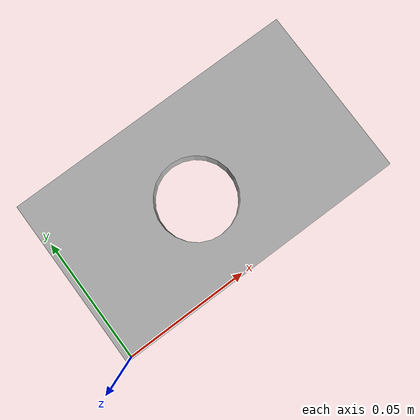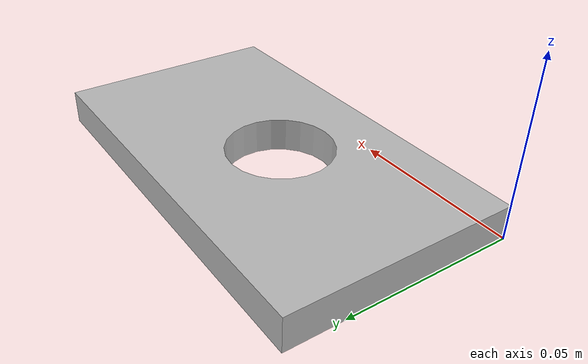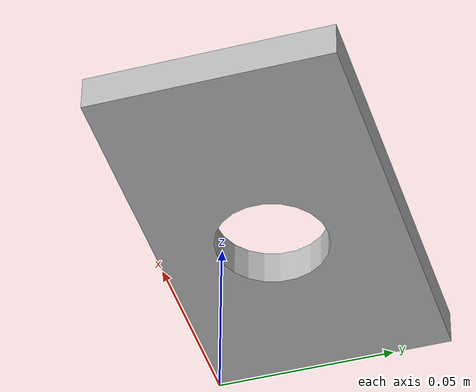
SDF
<?xml version="1.0"?>
<sdf version="1.5">
  <model name="varun">
    <pose>0 0 0 1.5707963267948966 0 0</pose>
    <link name="body">
      <gravity>0</gravity>
      <pose>0 0 0 0 0 0</pose>
      <velocity_decay>
        <linear>0.0005</linear>
        <angular>0.0005</angular>
      </velocity_decay>
      <inertial>
        <pose>0.55 0.16 0 0 0 0</pose>
        <mass>38.835</mass>
        <inertia>
          <ixx>1.36</ixx>
          <ixy>-1.25</ixy>
          <ixz>0</ixz>
          <iyy>5.13</iyy>
          <iyz>0</iyz>
          <izz>5.68</izz>
        </inertia>
      </inertial>
      <visual name="body_visual">
        <geometry>
          <mesh>
            <uri>model://varun_description/meshes/varun.dae</uri>
          </mesh>
        </geometry>
      </visual>
      <collision name="body_collision">
        <geometry>
          <mesh>
            <uri>model://varun_description/meshes/varun.dae</uri>
          </mesh>
        </geometry>
      </collision>
      <sensor name="front_camera" type="camera">
        <always_on>1</always_on>
        <update_rate>30</update_rate>
        <visualize>true</visualize>
        <pose>1.15 0.17 0.2 0 0 0</pose>
        <camera>
          <horizontal_fov>1.047</horizontal_fov>
          <image>
            <width>640</width>
            <height>480</height>
          </image>
          <clip>
            <near>0.1</near>
            <far>100</far>
          </clip>
        </camera>
        <plugin filename="libgazebo_ros_camera.so" name="camera_controller">
          <alwaysOn>true</alwaysOn>
          <updateRate>0.0</updateRate>
          <cameraName>varun/sensors/front_camera</cameraName>
          <imageTopicName>image_raw</imageTopicName>
          <cameraInfoTopicName>camera_info</cameraInfoTopicName>
          <hackBaseline>0.07</hackBaseline>
          <distortionK1>0.0</distortionK1>
          <distortionK2>0.0</distortionK2>
          <distortionK3>0.0</distortionK3>
          <distortionT1>0.0</distortionT1>
          <distortionT2>0.0</distortionT2>
        </plugin>
      </sensor>
      <sensor name="bottom_camera" type="camera">
        <always_on>1</always_on>
        <update_rate>30</update_rate>
        <visualize>true</visualize>
        <pose>0.56 0.17 0.1477 0 1.5707963 0</pose>
        <camera>
          <horizontal_fov>1.047</horizontal_fov>
          <image>
            <width>640</width>
            <height>480</height>
          </image>
          <clip>
            <near>0.1</near>
            <far>100</far>
          </clip>
        </camera>
        <plugin filename="libgazebo_ros_camera.so" name="camera_controller">
          <alwaysOn>true</alwaysOn>
          <updateRate>0.0</updateRate>
          <cameraName>varun/sensors/bottom_camera</cameraName>
          <imageTopicName>image_raw</imageTopicName>
          <cameraInfoTopicName>camera_info</cameraInfoTopicName>
          <hackBaseline>0.07</hackBaseline>
          <distortionK1>0.0</distortionK1>
          <distortionK2>0.0</distortionK2>
          <distortionK3>0.0</distortionK3>
          <distortionT1>0.0</distortionT1>
          <distortionT2>0.0</distortionT2>
        </plugin>
      </sensor>
    </link>
    <plugin filename="libgazebo_ros_imu.so" name="imu_plugin">
      <alwaysOn>true</alwaysOn>
      <updateRate>0.0</updateRate>
      <topicName>varun/sensors/imu/imu_raw</topicName>
      <bodyName>body</bodyName>
    </plugin>
  </model>
</sdf>
